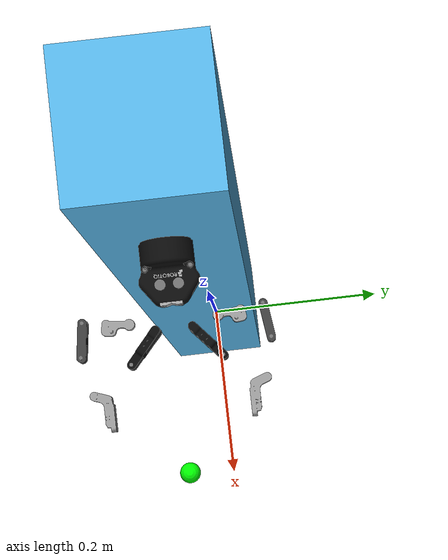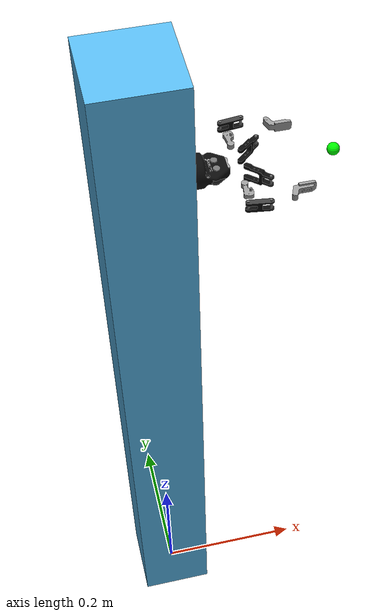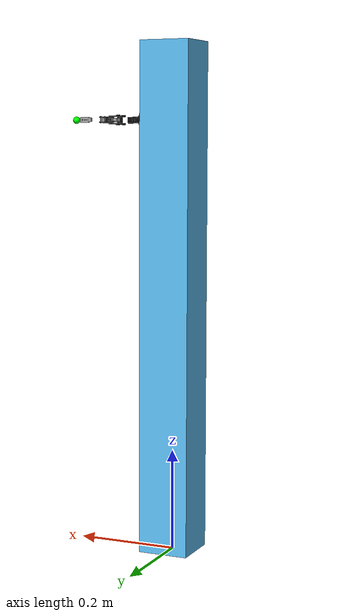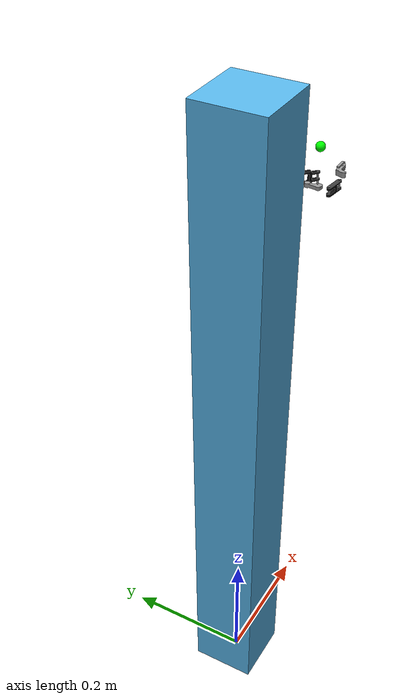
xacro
<?xml version="1.0" ?>
<robot name="robotiq_85_gripper" xmlns:xacro="http://ros.org/wiki/xacro">
    <xacro:include filename="$(find robotiq_85_description)/urdf/robotiq_85_gripper_macro_ignition.urdf.xacro" />

    <gazebo>
        <plugin filename="gz_ros2_control-system" name="gz_ros2_control::GazeboSimROS2ControlPlugin">
            <parameters>$(find robotiq_85_description)/config/gripper_controller.yaml</parameters>
        </plugin>
    </gazebo>

    <link name="world"/>
    <joint name="world_fixed" type="fixed">
        <origin xyz="0 0 0" rpy="0 0 0"/>
        <parent link="world"/>
        <child link="gripper_root_link"/>
    </joint>

    <link name="gripper_root_link">
        <visual>
            <origin xyz="0 0 0.5" rpy="0 0 0"/>
            <geometry>
                <box size="0.1 0.1 1.0"/>
            </geometry>
        </visual>
        <collision>
            <origin xyz="0 0 0.5" rpy="0 0 0"/>
            <geometry>
                <box size="0.1 0.1 1.0"/>
            </geometry>
        </collision>
        <inertial>
            <mass value="1e2" />
            <origin xyz="0.0 0.0 0.0" />
            <inertia ixx = "0.000001" ixy = "0.000000" ixz = "0.000000"
                     iyx = "0.000000" iyy = "0.000001" iyz = "0.000000"
                     izx = "0.000000" izy = "0.000000" izz = "0.000001" />
        </inertial>
    </link>

    <xacro:robotiq_85_gripper prefix="" parent="gripper_root_link" >
        <origin xyz="0.05 0 0.85" rpy="0 0 0"/>
    </xacro:robotiq_85_gripper>
</robot>

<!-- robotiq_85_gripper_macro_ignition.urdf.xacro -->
<robot name="robotiq_85_gripper" xmlns:xacro="http://ros.org/wiki/xacro">

	<xacro:macro name="robotiq_85_gripper" params="prefix parent *origin">

		<joint name="${prefix}robotiq_85_base_joint" type="fixed">
			<parent link="${parent}"/>
			<child link="${prefix}robotiq_85_base_link"/>
			<xacro:insert_block name="origin"/>
		</joint>

		<link name="${prefix}robotiq_85_base_link">
			<!-- Visual aid for grasping -->
			<visual>
				<origin xyz="0.16 0 0" rpy="0 0 0" />
				<geometry>
					<sphere radius="0.007"/>
				</geometry>
				<material name="">
					<color rgba="0 1.0 0 1.0"/>
				</material>
			</visual>
			<!-- Gripper body -->
			<visual>
				<geometry>
					<mesh filename="package://robotiq_85_description/meshes/visual/robotiq_85_base_link.dae"/>
				</geometry>
			</visual>
			<collision>
				<geometry>
					<mesh filename="package://robotiq_85_description/meshes/collision/robotiq_85_base_link.stl"/>
				</geometry>
			</collision>
			<inertial>
				<mass value="0.636951" />
				<origin xyz="0.0 0.0 0.0" />
				<inertia ixx = "0.000380" ixy = "0.000000" ixz = "0.000000"
					iyx = "0.000000" iyy = "0.001110" iyz = "0.000000"
					izx = "0.000000" izy = "0.000000" izz = "0.001171" />
			</inertial>
		</link>

		<joint name="${prefix}robotiq_85_left_knuckle_joint" type="revolute">
			<parent link="${prefix}robotiq_85_base_link"/>
			<child link="${prefix}robotiq_85_left_knuckle_link"/>
			<axis xyz="0 0 1"/>
			<origin rpy="${pi} 0.0 0.0" xyz="0.05490451627 0.03060114443 0.0"/>
			<limit lower="0.0" upper="0.804" velocity="0.5" effort="50"/>
			<dynamics damping="100.0" />
		</joint>

		<gazebo reference="${prefix}robotiq_85_left_knuckle_link">
			<kp>1000000.0</kp>
			<kd>100.0</kd>
			<mu1>30.0</mu1>
			<mu2>30.0</mu2>
			<maxVel>1.0</maxVel>
			<minDepth>0.001</minDepth>
			<material>Gazebo/Grey</material>
		</gazebo>

		<joint name="${prefix}robotiq_85_right_knuckle_joint" type="continuous">
			<parent link="${prefix}robotiq_85_base_link"/>
			<child link="${prefix}robotiq_85_right_knuckle_link"/>
			<axis xyz="0 0 1"/>
			<origin rpy="0.0 0.0 0.0" xyz="0.05490451627 -0.03060114443 0.0"/>
			<limit lower="-3.14" upper="3.14" velocity="100.0" effort="50"/>
			<mimic joint="${prefix}robotiq_85_left_knuckle_joint"/>
			<dynamics damping="100.0" />
		</joint>

		<gazebo reference="${prefix}robotiq_85_right_knuckle_link">
			<kp>1000000.0</kp>
			<kd>100.0</kd>
			<mu1>30.0</mu1>
			<mu2>30.0</mu2>
			<maxVel>1.0</maxVel>
			<minDepth>0.001</minDepth>
			<material>Gazebo/Grey</material>
		</gazebo>

		<link name="${prefix}robotiq_85_left_knuckle_link">
			<visual>
				<geometry>
					<mesh filename="package://robotiq_85_description/meshes/visual/robotiq_85_knuckle_link.dae"/>
				</geometry>
			</visual>
			<collision>
				<geometry>
					<mesh filename="package://robotiq_85_description/meshes/collision/robotiq_85_knuckle_link.stl"/>
				</geometry>
			</collision>
			<inertial>
				<mass value="0.018491" />
				<origin xyz="0.0 0.0 0.0" />
				<inertia ixx = "0.000009" ixy = "-0.000001" ixz = "0.000000"
					iyx = "-0.000001" iyy = "0.000001" iyz = "0.000000"
					izx = "0.000000" izy = "0.000000" izz = "0.000010" />
			</inertial>
		</link>

		<link name="${prefix}robotiq_85_right_knuckle_link">
			<visual>
				<geometry>
					<mesh filename="package://robotiq_85_description/meshes/visual/robotiq_85_knuckle_link.dae"/>
				</geometry>
			</visual>
			<collision>
				<geometry>
					<mesh filename="package://robotiq_85_description/meshes/collision/robotiq_85_knuckle_link.stl"/>
				</geometry>
			</collision>
			<inertial>
				<mass value="0.018491" />
				<origin xyz="0.0 0.0 0.0" />
				<inertia ixx = "0.000009" ixy = "-0.000001" ixz = "0.000000"
					iyx = "-0.000001" iyy = "0.000001" iyz = "0.000000"
					izx = "0.000000" izy = "0.000000" izz = "0.000010" />
			</inertial>
		</link>

		<joint name="${prefix}robotiq_85_left_finger_joint" type="fixed">
			<parent link="${prefix}robotiq_85_left_knuckle_link"/>
			<child link="${prefix}robotiq_85_left_finger_link"/>
			<origin xyz="-0.00408552455 -0.03148604435 0.0" rpy="0 0 0" />
		</joint>

		<joint name="${prefix}robotiq_85_right_finger_joint" type="fixed">
			<parent link="${prefix}robotiq_85_right_knuckle_link"/>
			<child link="${prefix}robotiq_85_right_finger_link"/>
			<origin xyz="-0.00408552455 -0.03148604435 0.0" rpy="0 0 0" />
		</joint>

		<link name="${prefix}robotiq_85_left_finger_link">
			<visual>
				<geometry>
					<mesh filename="package://robotiq_85_description/meshes/visual/robotiq_85_finger_link.dae"/>
				</geometry>
			</visual>
			<collision>
				<geometry>
					<mesh filename="package://robotiq_85_description/meshes/collision/robotiq_85_finger_link.stl"/>
				</geometry>
			</collision>
			<inertial>
				<mass value="0.027309" />
				<origin xyz="0.0 0.0 0.0" />
				<inertia ixx = "0.000003" ixy = "-0.000002" ixz = "0.000000"
					iyx = "-0.000002" iyy = "0.000021" iyz = "0.000000"
					izx = "0.000000" izy = "0.000000" izz = "0.000020" />
			</inertial>
		</link>

		<link name="${prefix}robotiq_85_right_finger_link">
			<visual>
				<geometry>
					<mesh filename="package://robotiq_85_description/meshes/visual/robotiq_85_finger_link.dae"/>
				</geometry>
			</visual>
			<collision>
				<geometry>
					<mesh filename="package://robotiq_85_description/meshes/collision/robotiq_85_finger_link.stl"/>
				</geometry>
			</collision>
			<inertial>
				<mass value="0.027309" />
				<origin xyz="0.0 0.0 0.0" />
				<inertia ixx = "0.000003" ixy = "-0.000002" ixz = "0.000000"
					iyx = "-0.000002" iyy = "0.000021" iyz = "0.000000"
					izx = "0.000000" izy = "0.000000" izz = "0.000020" />
			</inertial>
		</link>

		<joint name="${prefix}robotiq_85_left_inner_knuckle_joint" type="continuous">
			<parent link="${prefix}robotiq_85_base_link"/>
			<child link="${prefix}robotiq_85_left_inner_knuckle_link"/>
			<axis xyz="0 0 1"/>
			<origin xyz="0.06142 0.0127 0" rpy="${pi} 0.0 0.0" />
			<limit lower="-3.14" upper="3.14" velocity="100.0" effort="0.1"/>
			<mimic joint="${prefix}robotiq_85_left_knuckle_joint" offset="0"/>
		</joint>

		<joint name="${prefix}robotiq_85_right_inner_knuckle_joint" type="continuous">
			<parent link="${prefix}robotiq_85_base_link"/>
			<child link="${prefix}robotiq_85_right_inner_knuckle_link"/>
			<axis xyz="0 0 1"/>
			<origin xyz="0.06142 -0.0127 0" rpy="0 0 0"/>
			<limit lower="-3.14" upper="3.14" velocity="100.0" effort="0.1"/>
			<mimic joint="${prefix}robotiq_85_left_knuckle_joint" offset="0"/>
		</joint>

		<link name="${prefix}robotiq_85_left_inner_knuckle_link">
			<visual>
				<geometry>
					<mesh filename="package://robotiq_85_description/meshes/visual/robotiq_85_inner_knuckle_link.dae"/>
				</geometry>
			</visual>
			<collision>
				<geometry>
					<mesh filename="package://robotiq_85_description/meshes/collision/robotiq_85_inner_knuckle_link.stl"/>
				</geometry>
			</collision>
			<inertial>
				<mass value="0.029951" />
				<origin xyz="0.0 0.0 0.0" />
				<inertia ixx = "0.000039" ixy = "0.000000" ixz = "0.000000"
					iyx = "0.000000" iyy = "0.000005" iyz = "0.000000"
					izx = "0.000000" izy = "0.000000" izz = "0.000035" />
			</inertial>
		</link>
		<link name="${prefix}robotiq_85_right_inner_knuckle_link">
			<visual>
				<geometry>
					<mesh filename="package://robotiq_85_description/meshes/visual/robotiq_85_inner_knuckle_link.dae"/>
				</geometry>
			</visual>
			<collision>
				<geometry>
					<mesh filename="package://robotiq_85_description/meshes/collision/robotiq_85_inner_knuckle_link.stl"/>
				</geometry>
			</collision>
			<inertial>
				<mass value="0.029951" />
				<origin xyz="0.0 0.0 0.0" />
				<inertia ixx = "0.000039" ixy = "0.000000" ixz = "0.000000"
					iyx = "0.000000" iyy = "0.000005" iyz = "0.000000"
					izx = "0.000000" izy = "0.000000" izz = "0.000035" />
			</inertial>
		</link>

		<joint name="${prefix}robotiq_85_left_finger_tip_joint" type="continuous">
			<parent link="${prefix}robotiq_85_left_inner_knuckle_link"/>
			<child link="${prefix}robotiq_85_left_finger_tip_link"/>
			<axis xyz="0 0 1"/>
			<origin xyz="0.04303959807 -0.03759940821 0.0" rpy="0.0 0.0 0.0"/>
			<limit lower="-3.14" upper="3.14" velocity="100.0" effort="0.1"/>
			<mimic joint="${prefix}robotiq_85_left_knuckle_joint" multiplier="-1"/>
		</joint>

		<joint name="${prefix}robotiq_85_right_finger_tip_joint" type="continuous">
			<parent link="${prefix}robotiq_85_right_inner_knuckle_link"/>
			<child link="${prefix}robotiq_85_right_finger_tip_link"/>
			<axis xyz="0 0 1"/>
			<origin rpy="0.0 0.0 0.0" xyz="0.04303959807 -0.03759940821  0.0"/>
			<limit lower="-3.14" upper="3.14" velocity="100.0" effort="0.1"/>
			<mimic joint="${prefix}robotiq_85_left_knuckle_joint" multiplier="-1"/>
		</joint>

		<link name="${prefix}robotiq_85_left_finger_tip_link">
			<visual>
				<geometry>
					<mesh filename="package://robotiq_85_description/meshes/visual/robotiq_85_finger_tip_link.dae"/>
				</geometry>
			</visual>
			<collision>
				<geometry>
					<mesh filename="package://robotiq_85_description/meshes/collision/robotiq_85_finger_tip_link.stl"/>
				</geometry>
			</collision>
			<inertial>
				<mass value="0.019555" />
				<origin xyz="0.0 0.0 0.0" />
				<inertia ixx = "0.000002" ixy = "0.000000" ixz = "0.000000"
					iyx = "0.000000" iyy = "0.000005" iyz = "0.000000"
					izx = "0.000000" izy = "0.000000" izz = "0.000006" />
			</inertial>
		</link>

		<gazebo reference="${prefix}robotiq_85_left_finger_tip_link">
			<kp>1000000.0</kp>
			<kd>100.0</kd>
			<mu1>30.0</mu1>
			<mu2>30.0</mu2>
			<maxVel>1.0</maxVel>
			<minDepth>0.001</minDepth>
			<material>Gazebo/Grey</material>
		</gazebo>
		<link name="${prefix}robotiq_85_right_finger_tip_link">
			<visual>
				<geometry>
					<mesh filename="package://robotiq_85_description/meshes/visual/robotiq_85_finger_tip_link.dae"/>
				</geometry>
			</visual>
			<collision>
				<geometry>
					<mesh filename="package://robotiq_85_description/meshes/collision/robotiq_85_finger_tip_link.stl"/>
				</geometry>
			</collision>
			<inertial>
				<mass value="0.019555" />
				<origin xyz="0.0 0.0 0.0" />
				<inertia ixx = "0.000002" ixy = "0.000000" ixz = "0.000000"
					iyx = "0.000000" iyy = "0.000005" iyz = "0.000000"
					izx = "0.000000" izy = "0.000000" izz = "0.000006" />
			</inertial>
		</link>

		<gazebo reference="${prefix}robotiq_85_right_finger_tip_link">
			<kp>1000000.0</kp>
			<kd>100.0</kd>
			<mu1>30.0</mu1>
			<mu2>30.0</mu2>
			<maxVel>1.0</maxVel>
			<minDepth>0.001</minDepth>
			<material>Gazebo/Grey</material>
		</gazebo>

		<xacro:include filename="$(find robotiq_85_description)/urdf/robotiq_85_gripper_gz_ignition.ros2_control.xacro"/>
		<!-- ros2 control instance -->
		<xacro:robotiq_85_gripper_ros2_control name="RobotiqGripperSystem"/>

		</xacro:macro>
</robot>
